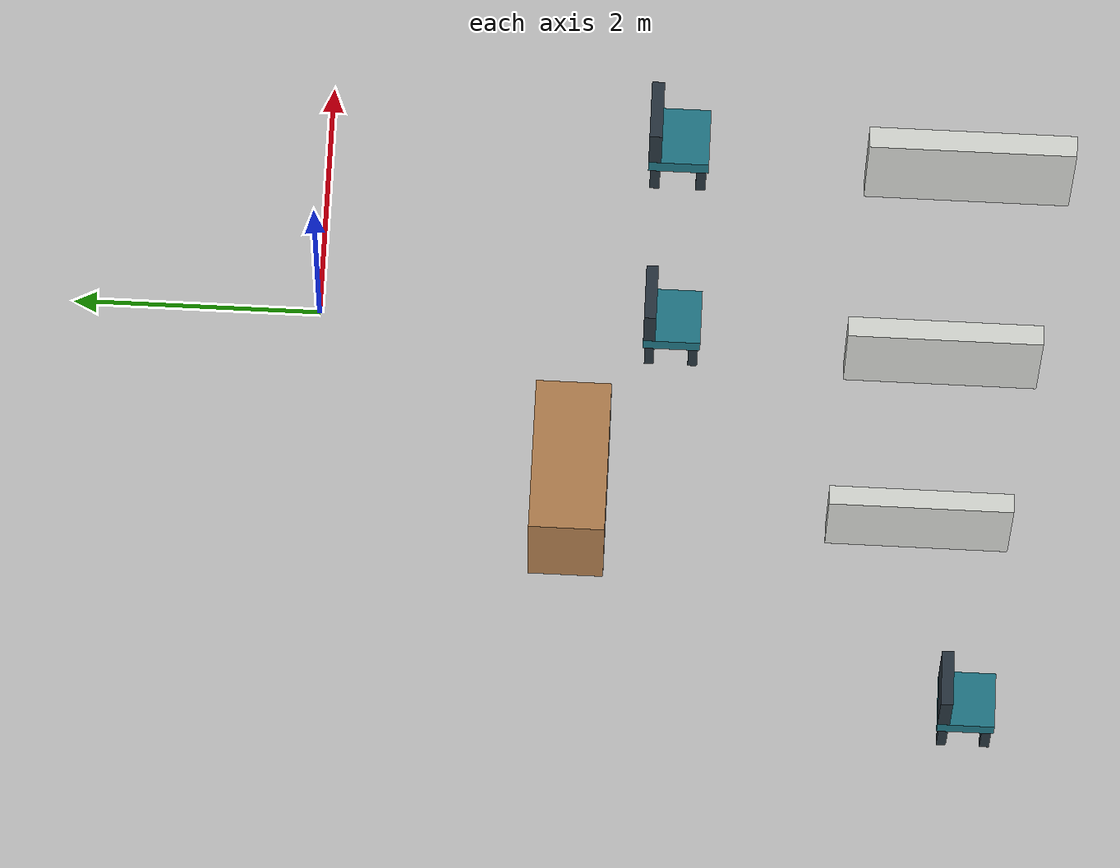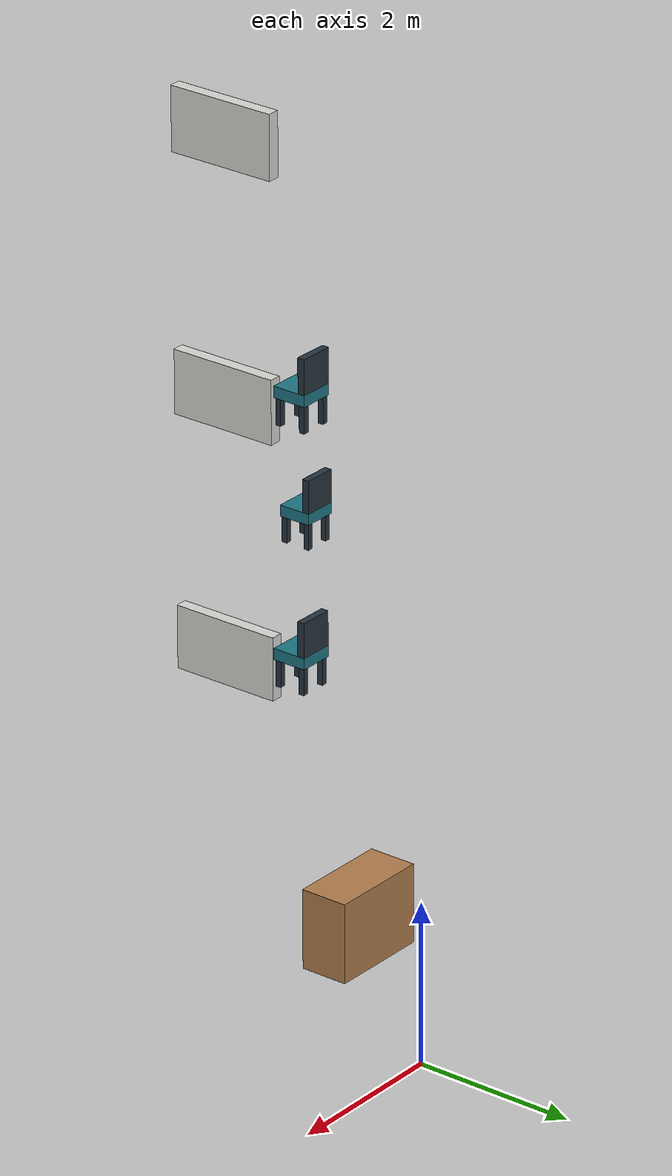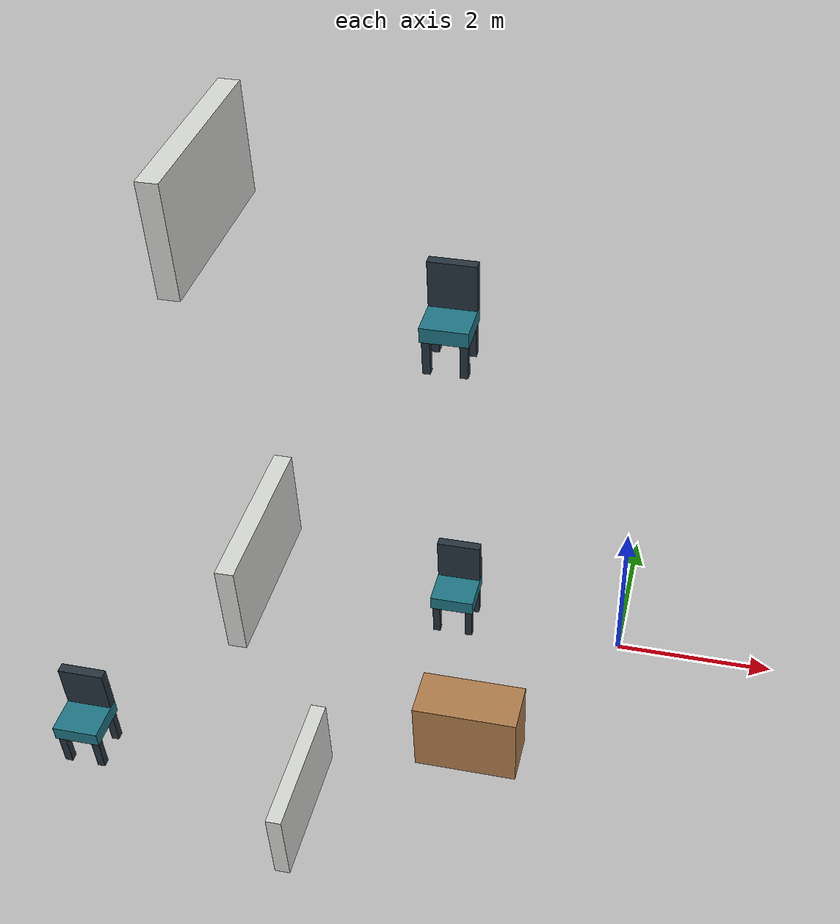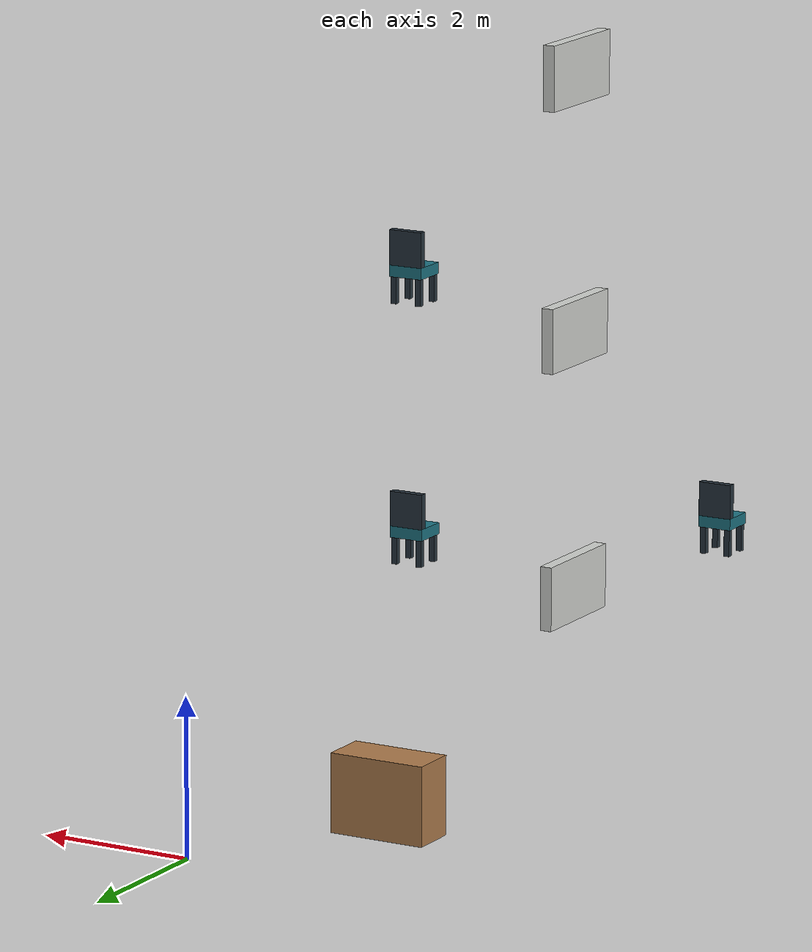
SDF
<sdf version="1.6">
 <world name="three_floor">
  <model name="f1_lintel_shared_west">
   <static>true</static>
   <pose>-2.6 -4.8 2.6 0 0 0</pose>
   <link name="f1_lintel_shared_west_link">
    <collision name="f1_lintel_shared_west_collision">
     <geometry><box><size>0.15 1.4 0.8</size></box></geometry>
    </collision>
    <visual name="f1_lintel_shared_west_visual">
     <geometry><box><size>0.15 1.4 0.8</size></box></geometry>
     <material><ambient>.84 .85 .83 1</ambient><diffuse>.84 .85 .83 1</diffuse></material>
    </visual>
   </link>
  </model>
  <model name="f2_lintel_shared_west">
   <static>true</static>
   <pose>-2.6 -4.8 5.8 0 0 0</pose>
   <link name="f2_lintel_shared_west_link">
    <collision name="f2_lintel_shared_west_collision">
     <geometry><box><size>0.15 1.4 0.8</size></box></geometry>
    </collision>
    <visual name="f2_lintel_shared_west_visual">
     <geometry><box><size>0.15 1.4 0.8</size></box></geometry>
     <material><ambient>.84 .85 .83 1</ambient><diffuse>.84 .85 .83 1</diffuse></material>
    </visual>
   </link>
  </model>
  <model name="f3_lintel_shared_west">
   <static>true</static>
   <pose>-2.6 -4.8 9 0 0 0</pose>
   <link name="f3_lintel_shared_west_link">
    <collision name="f3_lintel_shared_west_collision">
     <geometry><box><size>0.15 1.4 0.8</size></box></geometry>
    </collision>
    <visual name="f3_lintel_shared_west_visual">
     <geometry><box><size>0.15 1.4 0.8</size></box></geometry>
     <material><ambient>.84 .85 .83 1</ambient><diffuse>.84 .85 .83 1</diffuse></material>
    </visual>
   </link>
  </model>
  <model name="f1_s2_furniture_01_reception">
   <static>true</static>
   <pose>-1.55 -2.1 0 0 0 0</pose>
   <link name="f1_s2_furniture_01_reception_link">
    <collision name="f1_s2_furniture_01_reception_link_body_collision">
     <pose>0 0 0.5 0 0 0</pose>
     <geometry><box><size>1.25 0.6 1</size></box></geometry>
    </collision>
    <visual name="f1_s2_furniture_01_reception_link_body_visual">
     <pose>0 0 0.5 0 0 0</pose>
     <geometry><box><size>1.25 0.6 1</size></box></geometry>
     <material><ambient>0.69 0.49 0.3 1</ambient><diffuse>0.69 0.49 0.3 1</diffuse></material>
    </visual>
   </link>
  </model>
  <model name="f2_s2_furniture_24_seat">
   <static>true</static>
   <pose>-1.48 -2.85 3.2 0 0 0</pose>
   <link name="f2_s2_furniture_24_seat_link">
    <collision name="f2_s2_furniture_24_seat_link_seat_collision">
     <pose>0 0 0.4 0 0 0</pose>
     <geometry><box><size>0.43 0.43 0.14</size></box></geometry>
    </collision>
    <visual name="f2_s2_furniture_24_seat_link_seat_visual">
     <pose>0 0 0.4 0 0 0</pose>
     <geometry><box><size>0.43 0.43 0.14</size></box></geometry>
     <material><ambient>0.12 0.46 0.52 1</ambient><diffuse>0.12 0.46 0.52 1</diffuse></material>
    </visual>
    <collision name="f2_s2_furniture_24_seat_link_back_collision">
     <pose>0 0.17 0.685 0 0 0</pose>
     <geometry><box><size>0.43 0.09 0.43</size></box></geometry>
    </collision>
    <visual name="f2_s2_furniture_24_seat_link_back_visual">
     <pose>0 0.17 0.685 0 0 0</pose>
     <geometry><box><size>0.43 0.09 0.43</size></box></geometry>
     <material><ambient>0.15 0.2 0.24 1</ambient><diffuse>0.15 0.2 0.24 1</diffuse></material>
    </visual>
    <collision name="f2_s2_furniture_24_seat_link_leg_-0.16499999999999998_-0.16499999999999998_collision">
     <pose>-0.165 -0.165 0.165 0 0 0</pose>
     <geometry><box><size>0.07 0.07 0.33</size></box></geometry>
    </collision>
    <visual name="f2_s2_furniture_24_seat_link_leg_-0.16499999999999998_-0.16499999999999998_visual">
     <pose>-0.165 -0.165 0.165 0 0 0</pose>
     <geometry><box><size>0.07 0.07 0.33</size></box></geometry>
     <material><ambient>0.15 0.2 0.24 1</ambient><diffuse>0.15 0.2 0.24 1</diffuse></material>
    </visual>
    <collision name="f2_s2_furniture_24_seat_link_leg_-0.16499999999999998_0.16499999999999998_collision">
     <pose>-0.165 0.165 0.165 0 0 0</pose>
     <geometry><box><size>0.07 0.07 0.33</size></box></geometry>
    </collision>
    <visual name="f2_s2_furniture_24_seat_link_leg_-0.16499999999999998_0.16499999999999998_visual">
     <pose>-0.165 0.165 0.165 0 0 0</pose>
     <geometry><box><size>0.07 0.07 0.33</size></box></geometry>
     <material><ambient>0.15 0.2 0.24 1</ambient><diffuse>0.15 0.2 0.24 1</diffuse></material>
    </visual>
    <collision name="f2_s2_furniture_24_seat_link_leg_0.16499999999999998_-0.16499999999999998_collision">
     <pose>0.165 -0.165 0.165 0 0 0</pose>
     <geometry><box><size>0.07 0.07 0.33</size></box></geometry>
    </collision>
    <visual name="f2_s2_furniture_24_seat_link_leg_0.16499999999999998_-0.16499999999999998_visual">
     <pose>0.165 -0.165 0.165 0 0 0</pose>
     <geometry><box><size>0.07 0.07 0.33</size></box></geometry>
     <material><ambient>0.15 0.2 0.24 1</ambient><diffuse>0.15 0.2 0.24 1</diffuse></material>
    </visual>
    <collision name="f2_s2_furniture_24_seat_link_leg_0.16499999999999998_0.16499999999999998_collision">
     <pose>0.165 0.165 0.165 0 0 0</pose>
     <geometry><box><size>0.07 0.07 0.33</size></box></geometry>
    </collision>
    <visual name="f2_s2_furniture_24_seat_link_leg_0.16499999999999998_0.16499999999999998_visual">
     <pose>0.165 0.165 0.165 0 0 0</pose>
     <geometry><box><size>0.07 0.07 0.33</size></box></geometry>
     <material><ambient>0.15 0.2 0.24 1</ambient><diffuse>0.15 0.2 0.24 1</diffuse></material>
    </visual>
   </link>
  </model>
  <model name="f2_s2_furniture_29_seat">
   <static>true</static>
   <pose>-4.45 -5.15 3.2 0 0 0</pose>
   <link name="f2_s2_furniture_29_seat_link">
    <collision name="f2_s2_furniture_29_seat_link_seat_collision">
     <pose>0 0 0.4 0 0 0</pose>
     <geometry><box><size>0.42 0.42 0.14</size></box></geometry>
    </collision>
    <visual name="f2_s2_furniture_29_seat_link_seat_visual">
     <pose>0 0 0.4 0 0 0</pose>
     <geometry><box><size>0.42 0.42 0.14</size></box></geometry>
     <material><ambient>0.12 0.46 0.52 1</ambient><diffuse>0.12 0.46 0.52 1</diffuse></material>
    </visual>
    <collision name="f2_s2_furniture_29_seat_link_back_collision">
     <pose>0 0.165 0.68 0 0 0</pose>
     <geometry><box><size>0.42 0.09 0.42</size></box></geometry>
    </collision>
    <visual name="f2_s2_furniture_29_seat_link_back_visual">
     <pose>0 0.165 0.68 0 0 0</pose>
     <geometry><box><size>0.42 0.09 0.42</size></box></geometry>
     <material><ambient>0.15 0.2 0.24 1</ambient><diffuse>0.15 0.2 0.24 1</diffuse></material>
    </visual>
    <collision name="f2_s2_furniture_29_seat_link_leg_-0.15999999999999998_-0.15999999999999998_collision">
     <pose>-0.16 -0.16 0.165 0 0 0</pose>
     <geometry><box><size>0.07 0.07 0.33</size></box></geometry>
    </collision>
    <visual name="f2_s2_furniture_29_seat_link_leg_-0.15999999999999998_-0.15999999999999998_visual">
     <pose>-0.16 -0.16 0.165 0 0 0</pose>
     <geometry><box><size>0.07 0.07 0.33</size></box></geometry>
     <material><ambient>0.15 0.2 0.24 1</ambient><diffuse>0.15 0.2 0.24 1</diffuse></material>
    </visual>
    <collision name="f2_s2_furniture_29_seat_link_leg_-0.15999999999999998_0.15999999999999998_collision">
     <pose>-0.16 0.16 0.165 0 0 0</pose>
     <geometry><box><size>0.07 0.07 0.33</size></box></geometry>
    </collision>
    <visual name="f2_s2_furniture_29_seat_link_leg_-0.15999999999999998_0.15999999999999998_visual">
     <pose>-0.16 0.16 0.165 0 0 0</pose>
     <geometry><box><size>0.07 0.07 0.33</size></box></geometry>
     <material><ambient>0.15 0.2 0.24 1</ambient><diffuse>0.15 0.2 0.24 1</diffuse></material>
    </visual>
    <collision name="f2_s2_furniture_29_seat_link_leg_0.15999999999999998_-0.15999999999999998_collision">
     <pose>0.16 -0.16 0.165 0 0 0</pose>
     <geometry><box><size>0.07 0.07 0.33</size></box></geometry>
    </collision>
    <visual name="f2_s2_furniture_29_seat_link_leg_0.15999999999999998_-0.15999999999999998_visual">
     <pose>0.16 -0.16 0.165 0 0 0</pose>
     <geometry><box><size>0.07 0.07 0.33</size></box></geometry>
     <material><ambient>0.15 0.2 0.24 1</ambient><diffuse>0.15 0.2 0.24 1</diffuse></material>
    </visual>
    <collision name="f2_s2_furniture_29_seat_link_leg_0.15999999999999998_0.15999999999999998_collision">
     <pose>0.16 0.16 0.165 0 0 0</pose>
     <geometry><box><size>0.07 0.07 0.33</size></box></geometry>
    </collision>
    <visual name="f2_s2_furniture_29_seat_link_leg_0.15999999999999998_0.15999999999999998_visual">
     <pose>0.16 0.16 0.165 0 0 0</pose>
     <geometry><box><size>0.07 0.07 0.33</size></box></geometry>
     <material><ambient>0.15 0.2 0.24 1</ambient><diffuse>0.15 0.2 0.24 1</diffuse></material>
    </visual>
   </link>
  </model>
  <model name="f3_s2_furniture_53_seat">
   <static>true</static>
   <pose>-1.48 -2.83 6.4 0 0 0</pose>
   <link name="f3_s2_furniture_53_seat_link">
    <collision name="f3_s2_furniture_53_seat_link_seat_collision">
     <pose>0 0 0.4 0 0 0</pose>
     <geometry><box><size>0.43 0.43 0.14</size></box></geometry>
    </collision>
    <visual name="f3_s2_furniture_53_seat_link_seat_visual">
     <pose>0 0 0.4 0 0 0</pose>
     <geometry><box><size>0.43 0.43 0.14</size></box></geometry>
     <material><ambient>0.12 0.46 0.52 1</ambient><diffuse>0.12 0.46 0.52 1</diffuse></material>
    </visual>
    <collision name="f3_s2_furniture_53_seat_link_back_collision">
     <pose>0 0.17 0.685 0 0 0</pose>
     <geometry><box><size>0.43 0.09 0.43</size></box></geometry>
    </collision>
    <visual name="f3_s2_furniture_53_seat_link_back_visual">
     <pose>0 0.17 0.685 0 0 0</pose>
     <geometry><box><size>0.43 0.09 0.43</size></box></geometry>
     <material><ambient>0.15 0.2 0.24 1</ambient><diffuse>0.15 0.2 0.24 1</diffuse></material>
    </visual>
    <collision name="f3_s2_furniture_53_seat_link_leg_-0.16499999999999998_-0.16499999999999998_collision">
     <pose>-0.165 -0.165 0.165 0 0 0</pose>
     <geometry><box><size>0.07 0.07 0.33</size></box></geometry>
    </collision>
    <visual name="f3_s2_furniture_53_seat_link_leg_-0.16499999999999998_-0.16499999999999998_visual">
     <pose>-0.165 -0.165 0.165 0 0 0</pose>
     <geometry><box><size>0.07 0.07 0.33</size></box></geometry>
     <material><ambient>0.15 0.2 0.24 1</ambient><diffuse>0.15 0.2 0.24 1</diffuse></material>
    </visual>
    <collision name="f3_s2_furniture_53_seat_link_leg_-0.16499999999999998_0.16499999999999998_collision">
     <pose>-0.165 0.165 0.165 0 0 0</pose>
     <geometry><box><size>0.07 0.07 0.33</size></box></geometry>
    </collision>
    <visual name="f3_s2_furniture_53_seat_link_leg_-0.16499999999999998_0.16499999999999998_visual">
     <pose>-0.165 0.165 0.165 0 0 0</pose>
     <geometry><box><size>0.07 0.07 0.33</size></box></geometry>
     <material><ambient>0.15 0.2 0.24 1</ambient><diffuse>0.15 0.2 0.24 1</diffuse></material>
    </visual>
    <collision name="f3_s2_furniture_53_seat_link_leg_0.16499999999999998_-0.16499999999999998_collision">
     <pose>0.165 -0.165 0.165 0 0 0</pose>
     <geometry><box><size>0.07 0.07 0.33</size></box></geometry>
    </collision>
    <visual name="f3_s2_furniture_53_seat_link_leg_0.16499999999999998_-0.16499999999999998_visual">
     <pose>0.165 -0.165 0.165 0 0 0</pose>
     <geometry><box><size>0.07 0.07 0.33</size></box></geometry>
     <material><ambient>0.15 0.2 0.24 1</ambient><diffuse>0.15 0.2 0.24 1</diffuse></material>
    </visual>
    <collision name="f3_s2_furniture_53_seat_link_leg_0.16499999999999998_0.16499999999999998_collision">
     <pose>0.165 0.165 0.165 0 0 0</pose>
     <geometry><box><size>0.07 0.07 0.33</size></box></geometry>
    </collision>
    <visual name="f3_s2_furniture_53_seat_link_leg_0.16499999999999998_0.16499999999999998_visual">
     <pose>0.165 0.165 0.165 0 0 0</pose>
     <geometry><box><size>0.07 0.07 0.33</size></box></geometry>
     <material><ambient>0.15 0.2 0.24 1</ambient><diffuse>0.15 0.2 0.24 1</diffuse></material>
    </visual>
   </link>
  </model>
 </world>
</sdf>
